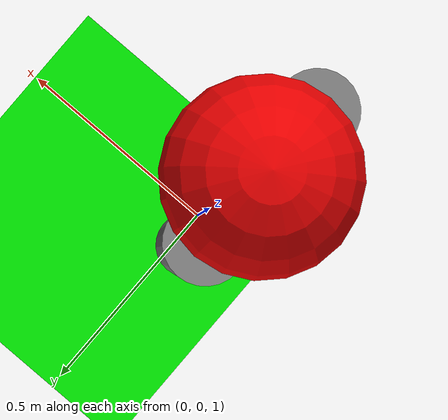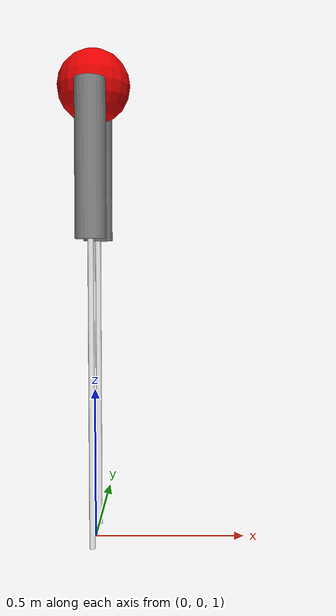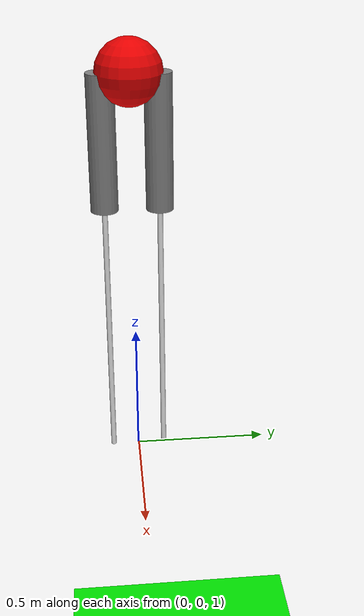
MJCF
<mujoco>
    <compiler coordinate="local" />
    <option timestep="0.001" integrator="RK4" gravity="0 0 -9.81">
		<flag sensornoise="disable" contact="enable" energy="enable"/>
	</option>

    <worldbody>
        <geom type="plane" size="25 2 0.01" rgba="0 0.9 0 1"/>
        <body name="SLIP_biped" pos="0 0 2.5">
            <joint name="x" type="slide" pos="0 0 0" axis="1 0 0" />
            <joint name="z" type="slide" pos="0 0 0" axis="0 0 1" />
            <geom type="sphere" size="0.12" mass="1" rgba="0.9 0 0 1"/>
            <body name="thigh1" pos="0 -0.1 -0.25">
                <joint name="hip_joint1" type="hinge" pos="0 0 0.25" axis="0 -1 0" damping="0.1"/>
                <geom type="cylinder" size="0.05 0.25" rgba="0.5 0.5 0.5 1" mass="0.25"/>
                <body name="shin_calf1" pos="0 0 -0.75">
                    <joint name="knee_joint1" type="slide" pos="0 0 0.5" axis="0 0 1" stiffness="1000"/>
                    <geom type="cylinder" size="0.01 0.5" rgba="0.9 0.9 0.9 1" mass="0.15"/>
                </body>
            </body>
            <body name="thigh2" pos="0 0.1 -0.25">
                <joint name="hip_joint2" type="hinge" pos="0 0 0.25" axis="0 -1 0" damping="0.1"/>
                <geom type="cylinder" size="0.05 0.25" rgba="0.5 0.5 0.5 1" mass="0.25" />
                <body name="shin_calf2" pos="0 0 -0.75">
                    <joint name="knee_joint2" type="slide" pos="0 0 0.5" axis="0 0 1" stiffness="1000" />
                    <geom type="cylinder" size="0.01 0.5" rgba="0.9 0.9 0.9 1" mass="0.15"/>
                </body>
            </body>
        </body>
    </worldbody>

    <actuator>
        <motor ctrllimited="true" ctrlrange="-1. 1." gear="20." joint="hip_joint1" />
        <motor ctrllimited="true" ctrlrange="-1. 1." gear="20." joint="hip_joint2" />
    </actuator>

</mujoco>
